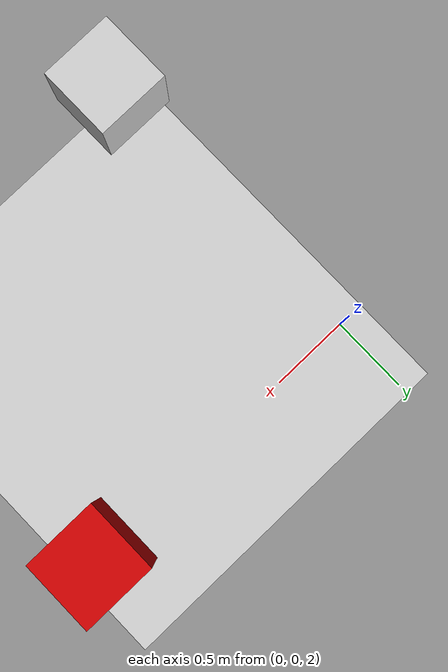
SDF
<sdf version="1.6">
  <world name="empty">
    <physics name="10ms" type="ode">
      <max_step_size>0.01</max_step_size>
      <real_time_factor>1.0</real_time_factor>
    </physics>
    <plugin filename="libignition-gazebo-physics-system.so" name="ignition::gazebo::systems::Physics">
    </plugin>
    <plugin filename="libignition-gazebo-user-commands-system.so" name="ignition::gazebo::systems::UserCommands">
    </plugin>
    <plugin filename="libignition-gazebo-scene-broadcaster-system.so" name="ignition::gazebo::systems::SceneBroadcaster">
    </plugin>

    <light type="directional" name="sun">
      <cast_shadows>true</cast_shadows>
      <pose>0 0 10 0 0 0</pose>
      <diffuse>0.8 0.8 0.8 1</diffuse>
      <specular>0.2 0.2 0.2 1</specular>
      <attenuation>
        <range>1000</range>
        <constant>0.9</constant>
        <linear>0.01</linear>
        <quadratic>0.001</quadratic>
      </attenuation>
      <direction>-0.5 0.1 -0.9</direction>
    </light>

    <model name="ground_plane">
      <static>true</static>
      <link name="link">
        <collision name="collision">
          <geometry>
            <plane>
              <normal>0 0 1</normal>
              <size>100 100</size>
            </plane>
          </geometry>
        </collision>
        <visual name="visual">
          <geometry>
            <plane>
              <normal>0 0 1</normal>
              <size>100 100</size>
            </plane>
          </geometry>
          <material>
            <ambient>0.8 0.8 0.8 1</ambient>
            <diffuse>0.8 0.8 0.8 1</diffuse>
            <specular>0.8 0.8 0.8 1</specular>
          </material>
        </visual>
      </link>
    </model>

  <model name="box">
    <pose>0 -2.0  2.0 0 0 0</pose>
    <link name="link">
      <collision name="collision">
        <geometry>
          <box>
            <size>0.5 0.5 0.5</size>
          </box>
        </geometry>
      </collision>
      <visual name="visual">
        <geometry>
          <box>
            <size>0.5 0.5 0.5</size>
          </box>
        </geometry>
        <material>
          <ambient>0.8 0.8 0.8 1</ambient>
          <diffuse>0.8 0.8 0.8 1</diffuse>
          <specular>0.8 0.8 0.8 1</specular>
        </material>
      </visual>
    </link>
  </model>

  <model name="box_red">
    <pose>2.0 0.0  2.0 0 0 0</pose>
    <link name="link">
      <collision name="collision">
        <geometry>
          <box>
            <size>0.5 0.5 0.5</size>
          </box>
        </geometry>
      </collision>
      <visual name="visual">
        <geometry>
          <box>
            <size>0.5 0.5 0.5</size>
          </box>
        </geometry>
        <material>
          <ambient>0.8 0.0 0.0 1</ambient>
          <diffuse>0.8 0.0 0.0 1</diffuse>
          <specular>0.8 0.0 0.0 1</specular>
        </material>
      </visual>
    </link>
  </model>

  </world>
</sdf>
